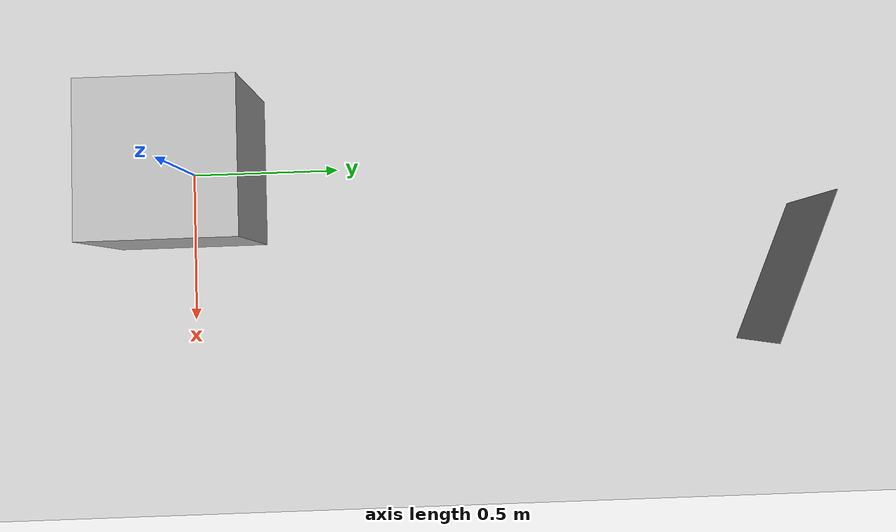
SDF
<?xml version="1.0"?>
<sdf version="1.6">
  <world name="track_world">
    <physics name="default_physics" default="true" type="ode">
      <gravity>0 0 -9.8</gravity>
      <max_step_size>0.001</max_step_size>
      <real_time_factor>1</real_time_factor>
    </physics>

    <include>
      <uri>model://sun</uri>
    </include>

    <include>
      <uri>model://ground_plane</uri>
    </include>

    <include>
      <uri>model://aruco_visual_marker_26</uri>
      <pose>0.4 1.96 0.25 0 0 -0.413</pose>  <!-- для радиуса 5м и от 1м до 3м  -->
      <name>aruco_marker</name>
    </include>

    <include>
      <uri>model://my_camera</uri>
      <pose>0 0 0.25  0 0 0</pose>
    </include>

  </world>
</sdf>

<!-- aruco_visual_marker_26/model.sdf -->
<sdf version="1.5">
  <model name="aruco_visual_marker_26">
    <pose>0 0 0 0 0 0</pose>
    <static>false</static>

    <link name="aruco_link_base">

      <visual name="visual">
        <geometry>
          <box>
            <size>0.5 0.001 0.5</size>
          </box>
        </geometry>
        <material>
          <script>
            <uri>model://aruco_visual_marker_26/materials/scripts</uri>
            <uri>model://aruco_visual_marker_26/materials/textures</uri>
            <name>ArucoVisualMarker26/Marker</name>
          </script>
          <emissive>1 1 1 1</emissive>
        </material>
      </visual>

      <collision name="collision">
        <geometry>
          <box>
            <size>0.5 0.5 0.5</size>
          </box>
        </geometry>
      </collision>

    </link>

    <plugin name="aruco_move" filename="libgazebo_ros_planar_move.so">
      <commandTopic>aruco_cmd_vel</commandTopic>
      <odometryTopic>odom</odometryTopic>
      <odometryFrame>odom</odometryFrame>
      <robotBaseFrame>aruco_link_base</robotBaseFrame>
      <odometryRate>100.0</odometryRate>
    </plugin>

  </model>
</sdf>

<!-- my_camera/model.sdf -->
<sdf version="1.5">
  <model name="my_camera">
    <pose>0 0 0 0 0 0</pose>
    <static>false</static>

    <link name="camera_link_base">

      <visual name="visual">
        <geometry>
          <box>
            <size>0.5 0.5 0.5</size>
          </box>
        </geometry>
      </visual>

      <collision name="collision">
        <geometry>
          <box>
            <size>0.5 0.5 0.5</size>
          </box>
        </geometry>
      </collision>

      <sensor name="camera_link_camera" type="camera">
        <pose>0 0 0 0 0 1.570796327</pose>

        <camera>
          <horizontal_fov>1.047197551</horizontal_fov>
          <image>
            <width>1920</width>
            <height>1080</height>
            <format>R8G8B8</format>
          </image>
        </camera>

        <always_on>1</always_on>
        <update_rate>30</update_rate>
        <visualize>true</visualize>

        <plugin name="camera_controller" filename="libgazebo_ros_camera.so">
          <cameraName>camera</cameraName>
          <imageTopicName>image_raw</imageTopicName>
          <cameraInfoTopicName>camera_info</cameraInfoTopicName>
          <odometryTopic>odom</odometryTopic>
          <odometryFrame>odom</odometryFrame>
          <frameName>camera_link_optical</frameName>
        </plugin>

      </sensor>

    </link>

    <!-- model plugin -->
    <plugin name="camera_move" filename="libgazebo_ros_planar_move.so">
      <commandTopic>camera_cmd_vel</commandTopic>
      <odometryTopic>odom</odometryTopic>
      <odometryFrame>odom</odometryFrame>                         <!-- header frame id -->
      <robotBaseFrame>camera_link_base</robotBaseFrame>           <!-- child  frame id -->
      <odometryRate>100.0</odometryRate>
    </plugin>

  </model>
</sdf>

      <inertial>
        <mass>5000</mass>
        <inertia> <!-- inertias are tricky to compute -->
          <!-- http://gazebosim.org/tutorials?tut=inertia&cat=build_robot -->
          <ixx>207.5</ixx>       <!-- for a box: ixx = 0.083 * mass * (y*y + z*z) -->
          <ixy>0</ixy>         <!-- for a box: ixy = 0 -->
          <ixz>0</ixz>         <!-- for a box: ixz = 0 -->
          <iyy>207.5</iyy>       <!-- for a box: iyy = 0.083 * mass * (x*x + z*z) -->
          <iyz>0</iyz>         <!-- for a box: iyz = 0 -->
          <izz>207.5</izz>       <!-- for a box: izz = 0.083 * mass * (x*x + y*y) -->
        </inertia>
      </inertial>
